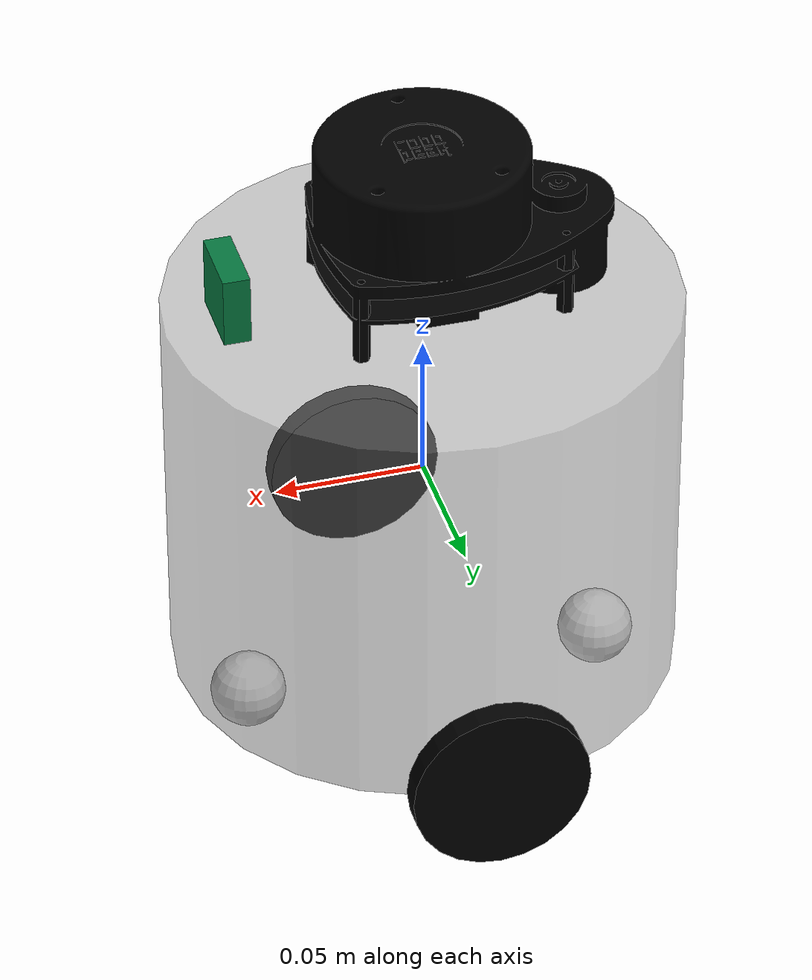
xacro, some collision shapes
<?xml version="1.0"?>
<robot xmlns:xacro="http://www.ros.org/wiki/xacro" name="robot">
    <!-- TODO: xacro-ize everything: (http://wiki.ros.org/urdf/Tutorials/Using%20Xacro%20to%20Clean%20Up%20a%20URDF%20File) -->

    <xacro:property name="base_radius" value="0.085"/>
    <xacro:property name="base_height" value="0.1393"/>

    <xacro:property name="wheel_radius" value="0.03"/>
    <xacro:property name="wheel_thickness" value="0.008"/>
    <!-- assuming no offset in base link c of m, and that mesh is perfectly
         within bounds of collision cylinder -->
    <xacro:property name="wheel_z_offset" value="${base_height/2 - 0.0065}"/>

    <xacro:property name="caster_radius" value="0.0127"/>
    <!-- assuming no offset in base link c of m, and that mesh is perfectly
         within bounds of collision cylinder -->
    <xacro:property name="caster_z_offset"
                    value="${fabs(wheel_z_offset) + wheel_radius - caster_radius}"/>

    <xacro:property name="wheelbase_width" value="0.17923"/>
    <xacro:property name="wheelbase_length" value="0.12206"/>

    <xacro:property name="camera_width" value="0.025"/>
    <xacro:property name="camera_length" value="0.023862"/>
    <xacro:property name="camera_thickness" value="0.009"/>
    <xacro:property name="camera_mass" value="0.003"/>

    <xacro:property name="laser_length" value="0.09674"/>
    <xacro:property name="laser_width" value="0.07028"/>
    <xacro:property name="laser_height" value="0.0577"/>
    <xacro:property name="laser_mass" value="0.190"/>

    <xacro:include filename="$(find robot_description)/urdf/materials.xacro" />

    <link name="base_link">
        <visual>
            <geometry>
                <!-- TODO fix this mesh's orientation -->
                <mesh filename="package://robot_description/meshes/base.STL"/>
            </geometry>
            <material name="gray"/>
        </visual>
        <collision>
            <geometry>
                <cylinder length="${base_height}" radius="${base_radius}"/>
            </geometry>
        </collision>
        <inertial>
            <mass value="1.015"/>
            <!-- en.wikipedia.org/wiki/List_of_moments_of_inertia#List_of_3D_inertia_tensors -->
            <!-- 3D inertia tensor for solid cylinder -->
            <inertia ixx="0.00611" ixy="0" ixz="0" iyy="0.00611" iyz="0" izz="0.008937"/>
        </inertial>
    </link>

    <xacro:macro name="wheel" params="name parent_name reflect">
        <xacro:property name="link_name" value="${name}_link"/>
        <xacro:property name="joint_name" value="${parent_name}_to_${name}_joint"/>

        <link name="${link_name}">
            <visual>
                <geometry>
                    <cylinder length="${wheel_thickness}" radius="${wheel_radius}"/>
                </geometry>
                <material name="black"/>
            </visual>
            <collision>
                <geometry>
                    <cylinder length="${wheel_thickness}" radius="${wheel_radius}"/>
                </geometry>
            </collision>
            <inertial>
                <mass value="0.011398"/>
                <!-- 3d inertia tensor for solid cylinder -->
                <inertia ixx="${2.612e-6}" ixy="0" ixz="0" iyy="${2.612e-6}" iyz="0" izz="${5.103e-6}"/>
            </inertial>
        </link>

        <joint name="${joint_name}" type="continuous">
            <parent link="${parent_name}_link"/>
            <child link="${link_name}"/>
            <origin xyz="0 ${reflect*wheelbase_width/2} -${wheel_z_offset}"
                    rpy="${-pi/2} 0 0"/>
            <axis xyz="0 0 1"/>
        </joint>

        <transmission name="${name}_trans">
            <type>transmission_interface/SimpleTransmission</type>
            <actuator name="${name}_motor">
                <mechanicalReduction>51.45</mechanicalReduction>
            </actuator>
            <joint name="${joint_name}">
                <hardwareInterface>hardware_interface/VelocityJointInterface</hardwareInterface>
            </joint>
        </transmission>
    </xacro:macro>
    <xacro:wheel name="left_wheel" parent_name="base" reflect="1"/>
    <xacro:wheel name="right_wheel" parent_name="base" reflect="-1"/>

    <xacro:macro name="caster" params="name parent_name reflect">
        <xacro:property name="link_name" value="${name}_link"/>

        <link name="${link_name}">
            <visual>
                <geometry>
                    <sphere radius="${caster_radius}"/>
                </geometry>
                <material name="white"/>
            </visual>
            <collision>
                <geometry>
                    <sphere radius="${caster_radius}"/>
                </geometry>
            </collision>
            <inertial>
                <mass value="0.015"/>
                <!-- 3d inertia tensor for solid sphere -->
                <inertia ixx="${9.677e-7}" ixy="0" ixz="0" iyy="${9.677e-7}" iyz="0" izz="${9.677e-7}"/>
            </inertial>
        </link>

        <joint name="${parent_name}_to_${name}_joint" type="continuous">
            <parent link="${parent_name}_link"/>
            <child link="${link_name}"/>
            <origin xyz="${reflect*wheelbase_length/2} 0 -${caster_z_offset}"/>
            <dynamics friction="0"/>
            <axis xyz="0 1 0"/>
        </joint>
    </xacro:macro>
    <xacro:caster name="front_caster" parent_name="base" reflect="1"/>
    <xacro:caster name="rear_caster" parent_name="base" reflect="-1"/>

    <!-- camera -->
    <xacro:property name="camera_sensor_x" value="0.009462"/>
    <link name="camera_link">
        <xacro:property name="camera_x_offset" value="${camera_length/2 - camera_sensor_x}"/>
        <visual>
            <geometry>
                <box size="${camera_thickness} ${camera_width} ${camera_length}"/>
            </geometry>
            <origin xyz="0 0 ${camera_x_offset}"/>
            <material name="green"/>
        </visual>
        <collision>
            <geometry>
                <box size="${camera_thickness} ${camera_width} ${camera_length}"/>
            </geometry>
            <origin xyz="0 0 ${camera_x_offset}"/>
        </collision>
        <inertial>
            <mass value="${camera_mass}"/>
            <!-- inertia tensor approximation using cuboid -->
            <inertia ixx="${1.02979e-5}" ixy="0" ixz="0" iyy="${1.1178e-5}" iyz="0" izz="${1.8911e-5}"/>
            <origin xyz="0 0 ${camera_x_offset}"/>
        </inertial>
    </link>
    <joint name="base_to_camera_joint" type="fixed">
        <parent link="base_link"/>
        <child link="camera_link"/>
        <origin xyz="${0.0602+camera_thickness/2} 0 ${base_height/2+0.0025+camera_sensor_x}"
                rpy="0 0 0"/>
        <axis xyz="1 0 0"/>
    </joint>

    <!-- laser -->
    <xacro:property name="laser_sensor_z" value="${0.042 - laser_height/2}"/>
    <link name="laser_link">
        <xacro:property name="laser_x_offset" value="${laser_length/2 - 0.03514}"/>
        <visual>
            <geometry>
                <mesh filename="package://robot_description/meshes/rplidar_main.STL"/>
            </geometry>
            <origin xyz="${laser_x_offset} 0 ${-laser_sensor_z}"
                    rpy="0 0 ${pi}"/>
            <material name="black"/>
        </visual>
        <collision>
            <geometry>
                <box size="${laser_length} ${laser_width} ${laser_height}"/>
            </geometry>
            <origin xyz="${-laser_x_offset} 0 ${-laser_sensor_z}"/>
        </collision>
        <inertial>
            <mass value="${laser_mass}"/>
            <!-- inertia tensor approximation using cuboid -->
            <inertia ixx="${2.0089e-4}" ixy="0" ixz="0" iyy="${2.2638e-4}" iyz="0" izz="${1.3092e-4}"/>
            <origin xyz="${-laser_x_offset} 0 ${-laser_sensor_z}"/>
        </inertial>
    </link>
    <joint name="base_to_laser_joint" type="fixed">
        <xacro:property name="laser_z_offset" value="${(base_height + laser_height) / 2 + laser_sensor_z}"/>
        <parent link="base_link"/>
        <child link="laser_link"/>
        <origin xyz="0 0 ${laser_z_offset}"
                rpy="0 0 ${pi}"/>
        <axis xyz="0 0 1"/>
    </joint>

    <xacro:include filename="$(find robot_description)/urdf/robot.gazebo.xacro" />
</robot>

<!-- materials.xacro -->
<robot>
    <material name="black">
        <color rgba="0 0 0 1"/>
    </material>

    <material name="white">
        <color rgba="1 1 1 1"/>
    </material>

    <material name="gray">
        <color rgba="0.6 0.6 0.6 0.5"/>
    </material>

    <material name="green">
        <color rgba="0.02 0.47 0.25 1"/>
    </material>
</robot>
